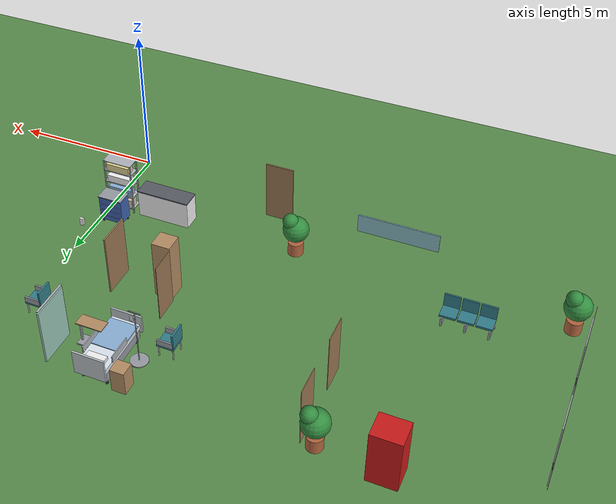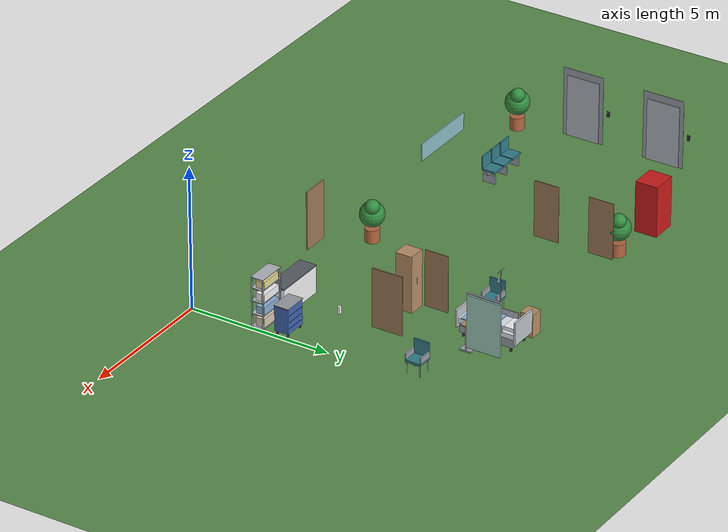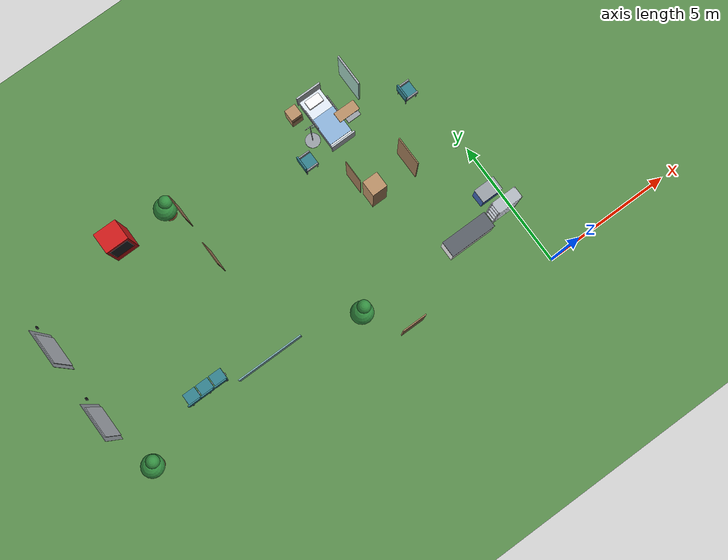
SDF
<sdf version="1.6">
 <world name="hospital">
  <include><uri>model://sun</uri></include>
  <model name="ground_plane">
   <static>true</static>
   <link name="link">
    <collision name="collision">
     <geometry><plane><normal>0 0 1</normal><size>100 100</size></plane></geometry>
     <surface>
      <contact><collide_bitmask>0xffff</collide_bitmask></contact>
      <friction><ode><mu>100</mu><mu2>50</mu2></ode></friction>
     </surface>
    </collision>
    <visual name="visual">
     <cast_shadows>false</cast_shadows>
     <geometry><plane><normal>0 0 1</normal><size>100 100</size></plane></geometry>
     <material>
      <ambient>0.35 0.55 0.3 1</ambient>
      <diffuse>0.35 0.55 0.3 1</diffuse>
      <specular>0 0 0 1</specular>
     </material>
    </visual>
   </link>
  </model>
  <model name="bathroom_door_N1">
   <static>true</static>
   <pose>-4.04 6.4 0 0 0 1.5708</pose>
   <link name="link">
    <visual name="v0">
     <pose>0 0 1 0 0 0</pose>
     <geometry><box><size>0.85 0.02 2</size></box></geometry>
     <material>
      <ambient>0.62 0.48 0.34 1</ambient>
      <diffuse>0.62 0.48 0.34 1</diffuse>
      <specular>0.1 0.1 0.1 1</specular>
     </material>
    </visual>
   </link>
  </model>
  <model name="door_N1">
   <static>true</static>
   <pose>-2.1 5.83 0 0 0 0</pose>
   <link name="link">
    <collision name="c0">
     <pose>0 0 1.04 0 0 0</pose>
     <geometry><box><size>0.045 1.1 2.08</size></box></geometry>
    </collision>
    <visual name="v0">
     <pose>0 0 1.04 0 0 0</pose>
     <geometry><box><size>0.045 1.1 2.08</size></box></geometry>
     <material>
      <ambient>0.62 0.48 0.34 1</ambient>
      <diffuse>0.62 0.48 0.34 1</diffuse>
      <specular>0.1 0.1 0.1 1</specular>
     </material>
    </visual>
   </link>
  </model>
  <model name="wardrobe_N1">
   <static>true</static>
   <pose>-3.7 5.6 0 0 0 3.1416</pose>
   <link name="link">
    <collision name="c0">
     <pose>0 0 1 0 0 0</pose>
     <geometry><box><size>0.6 0.6 2</size></box></geometry>
    </collision>
    <visual name="v0">
     <pose>0 0 1 0 0 0</pose>
     <geometry><box><size>0.6 0.6 2</size></box></geometry>
     <material>
      <ambient>0.72 0.56 0.4 1</ambient>
      <diffuse>0.72 0.56 0.4 1</diffuse>
      <specular>0.1 0.1 0.1 1</specular>
     </material>
    </visual>
    <visual name="v1">
     <pose>0 -0.301 1.025 0 0 0</pose>
     <geometry><box><size>0.02 0.005 0.25</size></box></geometry>
     <material>
      <ambient>0.6 0.62 0.65 1</ambient>
      <diffuse>0.6 0.62 0.65 1</diffuse>
      <specular>0.1 0.1 0.1 1</specular>
     </material>
    </visual>
   </link>
  </model>
  <model name="bed_N1">
   <static>true</static>
   <pose>-3.5 8.8 0 0 0 0</pose>
   <link name="link">
    <collision name="c0">
     <pose>-0.38 -0.85 0.075 0 0 0</pose>
     <geometry><cylinder><radius>0.05</radius><length>0.15</length></cylinder></geometry>
    </collision>
    <visual name="v0">
     <pose>-0.38 -0.85 0.075 0 0 0</pose>
     <geometry><cylinder><radius>0.05</radius><length>0.15</length></cylinder></geometry>
     <material>
      <ambient>0.15 0.15 0.17 1</ambient>
      <diffuse>0.15 0.15 0.17 1</diffuse>
      <specular>0.1 0.1 0.1 1</specular>
     </material>
    </visual>
    <collision name="c1">
     <pose>-0.38 0.85 0.075 0 0 0</pose>
     <geometry><cylinder><radius>0.05</radius><length>0.15</length></cylinder></geometry>
    </collision>
    <visual name="v1">
     <pose>-0.38 0.85 0.075 0 0 0</pose>
     <geometry><cylinder><radius>0.05</radius><length>0.15</length></cylinder></geometry>
     <material>
      <ambient>0.15 0.15 0.17 1</ambient>
      <diffuse>0.15 0.15 0.17 1</diffuse>
      <specular>0.1 0.1 0.1 1</specular>
     </material>
    </visual>
    <collision name="c2">
     <pose>0.38 -0.85 0.075 0 0 0</pose>
     <geometry><cylinder><radius>0.05</radius><length>0.15</length></cylinder></geometry>
    </collision>
    <visual name="v2">
     <pose>0.38 -0.85 0.075 0 0 0</pose>
     <geometry><cylinder><radius>0.05</radius><length>0.15</length></cylinder></geometry>
     <material>
      <ambient>0.15 0.15 0.17 1</ambient>
      <diffuse>0.15 0.15 0.17 1</diffuse>
      <specular>0.1 0.1 0.1 1</specular>
     </material>
    </visual>
    <collision name="c3">
     <pose>0.38 0.85 0.075 0 0 0</pose>
     <geometry><cylinder><radius>0.05</radius><length>0.15</length></cylinder></geometry>
    </collision>
    <visual name="v3">
     <pose>0.38 0.85 0.075 0 0 0</pose>
     <geometry><cylinder><radius>0.05</radius><length>0.15</length></cylinder></geometry>
     <material>
      <ambient>0.15 0.15 0.17 1</ambient>
      <diffuse>0.15 0.15 0.17 1</diffuse>
      <specular>0.1 0.1 0.1 1</specular>
     </material>
    </visual>
    <collision name="c4">
     <pose>0 0 0.3 0 0 0</pose>
     <geometry><box><size>0.9 1.9 0.3</size></box></geometry>
    </collision>
    <visual name="v4">
     <pose>0 0 0.3 0 0 0</pose>
     <geometry><box><size>0.9 1.9 0.3</size></box></geometry>
     <material>
      <ambient>0.6 0.62 0.65 1</ambient>
      <diffuse>0.6 0.62 0.65 1</diffuse>
      <specular>0.1 0.1 0.1 1</specular>
     </material>
    </visual>
    <visual name="v5">
     <pose>0 0 0.535 0 0 0</pose>
     <geometry><box><size>0.9 2 0.17</size></box></geometry>
     <material>
      <ambient>0.88 0.92 0.96 1</ambient>
      <diffuse>0.88 0.92 0.96 1</diffuse>
      <specular>0.1 0.1 0.1 1</specular>
     </material>
    </visual>
    <collision name="c6">
     <pose>0 1.05 0.7 0 0 0</pose>
     <geometry><box><size>1 0.06 0.8</size></box></geometry>
    </collision>
    <visual name="v6">
     <pose>0 1.05 0.7 0 0 0</pose>
     <geometry><box><size>1 0.06 0.8</size></box></geometry>
     <material>
      <ambient>0.75 0.78 0.8 1</ambient>
      <diffuse>0.75 0.78 0.8 1</diffuse>
      <specular>0.1 0.1 0.1 1</specular>
     </material>
    </visual>
    <collision name="c7">
     <pose>0 -1.05 0.6 0 0 0</pose>
     <geometry><box><size>1 0.06 0.6</size></box></geometry>
    </collision>
    <visual name="v7">
     <pose>0 -1.05 0.6 0 0 0</pose>
     <geometry><box><size>1 0.06 0.6</size></box></geometry>
     <material>
      <ambient>0.75 0.78 0.8 1</ambient>
      <diffuse>0.75 0.78 0.8 1</diffuse>
      <specular>0.1 0.1 0.1 1</specular>
     </material>
    </visual>
    <visual name="v8">
     <pose>0 0.72 0.68 0 0 0</pose>
     <geometry><box><size>0.6 0.35 0.12</size></box></geometry>
     <material>
      <ambient>0.97 0.97 0.97 1</ambient>
      <diffuse>0.97 0.97 0.97 1</diffuse>
      <specular>0.1 0.1 0.1 1</specular>
     </material>
    </visual>
    <visual name="v9">
     <pose>0 -0.35 0.635 0 0 0</pose>
     <geometry><box><size>0.92 1.1 0.03</size></box></geometry>
     <material>
      <ambient>0.55 0.7 0.85 1</ambient>
      <diffuse>0.55 0.7 0.85 1</diffuse>
      <specular>0.1 0.1 0.1 1</specular>
     </material>
    </visual>
    <visual name="v10">
     <pose>-0.47 0.2 0.73 0 0 0</pose>
     <geometry><box><size>0.03 0.8 0.22</size></box></geometry>
     <material>
      <ambient>0.7 0.72 0.75 1</ambient>
      <diffuse>0.7 0.72 0.75 1</diffuse>
      <specular>0.1 0.1 0.1 1</specular>
     </material>
    </visual>
    <visual name="v11">
     <pose>0.47 0.2 0.73 0 0 0</pose>
     <geometry><box><size>0.03 0.8 0.22</size></box></geometry>
     <material>
      <ambient>0.7 0.72 0.75 1</ambient>
      <diffuse>0.7 0.72 0.75 1</diffuse>
      <specular>0.1 0.1 0.1 1</specular>
     </material>
    </visual>
   </link>
  </model>
  <model name="bedside_cabinet_N1">
   <static>true</static>
   <pose>-4.35 9.6 0 0 0 0</pose>
   <link name="link">
    <collision name="c0">
     <pose>0 0 0.4 0 0 0</pose>
     <geometry><box><size>0.45 0.45 0.8</size></box></geometry>
    </collision>
    <visual name="v0">
     <pose>0 0 0.4 0 0 0</pose>
     <geometry><box><size>0.45 0.45 0.8</size></box></geometry>
     <material>
      <ambient>0.72 0.56 0.4 1</ambient>
      <diffuse>0.72 0.56 0.4 1</diffuse>
      <specular>0.1 0.1 0.1 1</specular>
     </material>
    </visual>
    <visual name="v1">
     <pose>0 -0.226 0.51 0 0 0</pose>
     <geometry><box><size>0.35 0.005 0.12</size></box></geometry>
     <material>
      <ambient>0.6 0.45 0.32 1</ambient>
      <diffuse>0.6 0.45 0.32 1</diffuse>
      <specular>0.1 0.1 0.1 1</specular>
     </material>
    </visual>
   </link>
  </model>
  <model name="iv_stand_N1">
   <static>true</static>
   <pose>-4.3 8.55 0 0 0 0</pose>
   <link name="link">
    <collision name="c0">
     <pose>0 0 0.015 0 0 0</pose>
     <geometry><cylinder><radius>0.28</radius><length>0.03</length></cylinder></geometry>
    </collision>
    <visual name="v0">
     <pose>0 0 0.015 0 0 0</pose>
     <geometry><cylinder><radius>0.28</radius><length>0.03</length></cylinder></geometry>
     <material>
      <ambient>0.6 0.62 0.65 1</ambient>
      <diffuse>0.6 0.62 0.65 1</diffuse>
      <specular>0.1 0.1 0.1 1</specular>
     </material>
    </visual>
    <collision name="c1">
     <pose>0 0 0.98 0 0 0</pose>
     <geometry><cylinder><radius>0.015</radius><length>1.9</length></cylinder></geometry>
    </collision>
    <visual name="v1">
     <pose>0 0 0.98 0 0 0</pose>
     <geometry><cylinder><radius>0.015</radius><length>1.9</length></cylinder></geometry>
     <material>
      <ambient>0.7 0.72 0.75 1</ambient>
      <diffuse>0.7 0.72 0.75 1</diffuse>
      <specular>0.1 0.1 0.1 1</specular>
     </material>
    </visual>
    <visual name="v2">
     <pose>0 0 1.91 0 0 0</pose>
     <geometry><box><size>0.4 0.02 0.02</size></box></geometry>
     <material>
      <ambient>0.7 0.72 0.75 1</ambient>
      <diffuse>0.7 0.72 0.75 1</diffuse>
      <specular>0.1 0.1 0.1 1</specular>
     </material>
    </visual>
    <visual name="v3">
     <pose>0.12 0 1.64 0 0 0</pose>
     <geometry><box><size>0.1 0.03 0.18</size></box></geometry>
     <material>
      <ambient>0.85 0.92 0.95 0.7</ambient>
      <diffuse>0.85 0.92 0.95 0.7</diffuse>
      <specular>0.1 0.1 0.1 1</specular>
     </material>
    </visual>
   </link>
  </model>
  <model name="visitor_chair_N1">
   <static>true</static>
   <pose>-4.95 7.9 0 0 0 1.5708</pose>
   <link name="link">
    <collision name="c0">
     <pose>-0.23 -0.23 0.2 0 0 0</pose>
     <geometry><cylinder><radius>0.02</radius><length>0.4</length></cylinder></geometry>
    </collision>
    <visual name="v0">
     <pose>-0.23 -0.23 0.2 0 0 0</pose>
     <geometry><cylinder><radius>0.02</radius><length>0.4</length></cylinder></geometry>
     <material>
      <ambient>0.6 0.62 0.65 1</ambient>
      <diffuse>0.6 0.62 0.65 1</diffuse>
      <specular>0.1 0.1 0.1 1</specular>
     </material>
    </visual>
    <collision name="c1">
     <pose>-0.23 0.23 0.2 0 0 0</pose>
     <geometry><cylinder><radius>0.02</radius><length>0.4</length></cylinder></geometry>
    </collision>
    <visual name="v1">
     <pose>-0.23 0.23 0.2 0 0 0</pose>
     <geometry><cylinder><radius>0.02</radius><length>0.4</length></cylinder></geometry>
     <material>
      <ambient>0.6 0.62 0.65 1</ambient>
      <diffuse>0.6 0.62 0.65 1</diffuse>
      <specular>0.1 0.1 0.1 1</specular>
     </material>
    </visual>
    <collision name="c2">
     <pose>0.23 -0.23 0.2 0 0 0</pose>
     <geometry><cylinder><radius>0.02</radius><length>0.4</length></cylinder></geometry>
    </collision>
    <visual name="v2">
     <pose>0.23 -0.23 0.2 0 0 0</pose>
     <geometry><cylinder><radius>0.02</radius><length>0.4</length></cylinder></geometry>
     <material>
      <ambient>0.6 0.62 0.65 1</ambient>
      <diffuse>0.6 0.62 0.65 1</diffuse>
      <specular>0.1 0.1 0.1 1</specular>
     </material>
    </visual>
    <collision name="c3">
     <pose>0.23 0.23 0.2 0 0 0</pose>
     <geometry><cylinder><radius>0.02</radius><length>0.4</length></cylinder></geometry>
    </collision>
    <visual name="v3">
     <pose>0.23 0.23 0.2 0 0 0</pose>
     <geometry><cylinder><radius>0.02</radius><length>0.4</length></cylinder></geometry>
     <material>
      <ambient>0.6 0.62 0.65 1</ambient>
      <diffuse>0.6 0.62 0.65 1</diffuse>
      <specular>0.1 0.1 0.1 1</specular>
     </material>
    </visual>
    <visual name="v4">
     <pose>0 0 0.44 0 0 0</pose>
     <geometry><box><size>0.55 0.55 0.08</size></box></geometry>
     <material>
      <ambient>0.2 0.5 0.55 1</ambient>
      <diffuse>0.2 0.5 0.55 1</diffuse>
      <specular>0.1 0.1 0.1 1</specular>
     </material>
    </visual>
    <visual name="v5">
     <pose>0 0.25 0.73 0 0 0</pose>
     <geometry><box><size>0.55 0.06 0.5</size></box></geometry>
     <material>
      <ambient>0.2 0.5 0.55 1</ambient>
      <diffuse>0.2 0.5 0.55 1</diffuse>
      <specular>0.1 0.1 0.1 1</specular>
     </material>
    </visual>
    <visual name="v6">
     <pose>-0.27 0 0.58 0 0 0</pose>
     <geometry><box><size>0.05 0.5 0.2</size></box></geometry>
     <material>
      <ambient>0.6 0.62 0.65 1</ambient>
      <diffuse>0.6 0.62 0.65 1</diffuse>
      <specular>0.1 0.1 0.1 1</specular>
     </material>
    </visual>
    <visual name="v7">
     <pose>0.27 0 0.58 0 0 0</pose>
     <geometry><box><size>0.05 0.5 0.2</size></box></geometry>
     <material>
      <ambient>0.6 0.62 0.65 1</ambient>
      <diffuse>0.6 0.62 0.65 1</diffuse>
      <specular>0.1 0.1 0.1 1</specular>
     </material>
    </visual>
   </link>
  </model>
  <model name="overbed_table_N1">
   <static>true</static>
   <pose>-2.75 8.5 0 0 0 0</pose>
   <link name="link">
    <collision name="c0">
     <pose>0.15 0 0.025 0 0 0</pose>
     <geometry><box><size>0.55 0.4 0.05</size></box></geometry>
    </collision>
    <visual name="v0">
     <pose>0.15 0 0.025 0 0 0</pose>
     <geometry><box><size>0.55 0.4 0.05</size></box></geometry>
     <material>
      <ambient>0.6 0.62 0.65 1</ambient>
      <diffuse>0.6 0.62 0.65 1</diffuse>
      <specular>0.1 0.1 0.1 1</specular>
     </material>
    </visual>
    <collision name="c1">
     <pose>0.35 0 0.45 0 0 0</pose>
     <geometry><box><size>0.05 0.05 0.8</size></box></geometry>
    </collision>
    <visual name="v1">
     <pose>0.35 0 0.45 0 0 0</pose>
     <geometry><box><size>0.05 0.05 0.8</size></box></geometry>
     <material>
      <ambient>0.7 0.72 0.75 1</ambient>
      <diffuse>0.7 0.72 0.75 1</diffuse>
      <specular>0.1 0.1 0.1 1</specular>
     </material>
    </visual>
    <visual name="v2">
     <pose>-0.05 0 0.865 0 0 0</pose>
     <geometry><box><size>0.85 0.4 0.03</size></box></geometry>
     <material>
      <ambient>0.72 0.56 0.4 1</ambient>
      <diffuse>0.72 0.56 0.4 1</diffuse>
      <specular>0.1 0.1 0.1 1</specular>
     </material>
    </visual>
   </link>
  </model>
  <model name="curtain_N1">
   <static>true</static>
   <pose>-2.1 9.3 0 0 0 0</pose>
   <link name="link">
    <collision name="c0">
     <pose>0 0 1.275 0 0 0</pose>
     <geometry><box><size>0.06 1.2 1.85</size></box></geometry>
    </collision>
    <visual name="v0">
     <pose>0 0 1.275 0 0 0</pose>
     <geometry><box><size>0.06 1.2 1.85</size></box></geometry>
     <material>
      <ambient>0.62 0.8 0.74 1</ambient>
      <diffuse>0.62 0.8 0.74 1</diffuse>
      <specular>0.1 0.1 0.1 1</specular>
     </material>
    </visual>
    <visual name="v1">
     <pose>0 0 2.265 0 0 0</pose>
     <geometry><box><size>0.06 1.2 0.03</size></box></geometry>
     <material>
      <ambient>0.7 0.72 0.75 1</ambient>
      <diffuse>0.7 0.72 0.75 1</diffuse>
      <specular>0.1 0.1 0.1 1</specular>
     </material>
    </visual>
   </link>
  </model>
  <model name="visitor_chair_N2">
   <static>true</static>
   <pose>-0.55 7.9 0 0 0 1.5708</pose>
   <link name="link">
    <collision name="c0">
     <pose>-0.23 -0.23 0.2 0 0 0</pose>
     <geometry><cylinder><radius>0.02</radius><length>0.4</length></cylinder></geometry>
    </collision>
    <visual name="v0">
     <pose>-0.23 -0.23 0.2 0 0 0</pose>
     <geometry><cylinder><radius>0.02</radius><length>0.4</length></cylinder></geometry>
     <material>
      <ambient>0.6 0.62 0.65 1</ambient>
      <diffuse>0.6 0.62 0.65 1</diffuse>
      <specular>0.1 0.1 0.1 1</specular>
     </material>
    </visual>
    <collision name="c1">
     <pose>-0.23 0.23 0.2 0 0 0</pose>
     <geometry><cylinder><radius>0.02</radius><length>0.4</length></cylinder></geometry>
    </collision>
    <visual name="v1">
     <pose>-0.23 0.23 0.2 0 0 0</pose>
     <geometry><cylinder><radius>0.02</radius><length>0.4</length></cylinder></geometry>
     <material>
      <ambient>0.6 0.62 0.65 1</ambient>
      <diffuse>0.6 0.62 0.65 1</diffuse>
      <specular>0.1 0.1 0.1 1</specular>
     </material>
    </visual>
    <collision name="c2">
     <pose>0.23 -0.23 0.2 0 0 0</pose>
     <geometry><cylinder><radius>0.02</radius><length>0.4</length></cylinder></geometry>
    </collision>
    <visual name="v2">
     <pose>0.23 -0.23 0.2 0 0 0</pose>
     <geometry><cylinder><radius>0.02</radius><length>0.4</length></cylinder></geometry>
     <material>
      <ambient>0.6 0.62 0.65 1</ambient>
      <diffuse>0.6 0.62 0.65 1</diffuse>
      <specular>0.1 0.1 0.1 1</specular>
     </material>
    </visual>
    <collision name="c3">
     <pose>0.23 0.23 0.2 0 0 0</pose>
     <geometry><cylinder><radius>0.02</radius><length>0.4</length></cylinder></geometry>
    </collision>
    <visual name="v3">
     <pose>0.23 0.23 0.2 0 0 0</pose>
     <geometry><cylinder><radius>0.02</radius><length>0.4</length></cylinder></geometry>
     <material>
      <ambient>0.6 0.62 0.65 1</ambient>
      <diffuse>0.6 0.62 0.65 1</diffuse>
      <specular>0.1 0.1 0.1 1</specular>
     </material>
    </visual>
    <visual name="v4">
     <pose>0 0 0.44 0 0 0</pose>
     <geometry><box><size>0.55 0.55 0.08</size></box></geometry>
     <material>
      <ambient>0.2 0.5 0.55 1</ambient>
      <diffuse>0.2 0.5 0.55 1</diffuse>
      <specular>0.1 0.1 0.1 1</specular>
     </material>
    </visual>
    <visual name="v5">
     <pose>0 0.25 0.73 0 0 0</pose>
     <geometry><box><size>0.55 0.06 0.5</size></box></geometry>
     <material>
      <ambient>0.2 0.5 0.55 1</ambient>
      <diffuse>0.2 0.5 0.55 1</diffuse>
      <specular>0.1 0.1 0.1 1</specular>
     </material>
    </visual>
    <visual name="v6">
     <pose>-0.27 0 0.58 0 0 0</pose>
     <geometry><box><size>0.05 0.5 0.2</size></box></geometry>
     <material>
      <ambient>0.6 0.62 0.65 1</ambient>
      <diffuse>0.6 0.62 0.65 1</diffuse>
      <specular>0.1 0.1 0.1 1</specular>
     </material>
    </visual>
    <visual name="v7">
     <pose>0.27 0 0.58 0 0 0</pose>
     <geometry><box><size>0.05 0.5 0.2</size></box></geometry>
     <material>
      <ambient>0.6 0.62 0.65 1</ambient>
      <diffuse>0.6 0.62 0.65 1</diffuse>
      <specular>0.1 0.1 0.1 1</specular>
     </material>
    </visual>
   </link>
  </model>
  <model name="lobby_sign">
   <static>true</static>
   <pose>-10 2.88 0 0 0 0</pose>
   <link name="link">
    <visual name="v0">
     <pose>0 0 2.3 0 0 0</pose>
     <geometry><box><size>2.5 0.04 0.6</size></box></geometry>
     <material>
      <ambient>0.55 0.75 0.78 1</ambient>
      <diffuse>0.55 0.75 0.78 1</diffuse>
      <specular>0.1 0.1 0.1 1</specular>
     </material>
    </visual>
   </link>
  </model>
  <model name="lobby_plant_2">
   <static>true</static>
   <pose>-15.4 2.4 0 0 0 0</pose>
   <link name="link">
    <collision name="c0">
     <pose>0 0 0.225 0 0 0</pose>
     <geometry><cylinder><radius>0.25</radius><length>0.45</length></cylinder></geometry>
    </collision>
    <visual name="v0">
     <pose>0 0 0.225 0 0 0</pose>
     <geometry><cylinder><radius>0.25</radius><length>0.45</length></cylinder></geometry>
     <material>
      <ambient>0.7 0.4 0.25 1</ambient>
      <diffuse>0.7 0.4 0.25 1</diffuse>
      <specular>0.1 0.1 0.1 1</specular>
     </material>
    </visual>
    <visual name="v1">
     <pose>0 0 0.95 0 0 0</pose>
     <geometry><sphere><radius>0.42</radius></sphere></geometry>
     <material>
      <ambient>0.2 0.55 0.25 1</ambient>
      <diffuse>0.2 0.55 0.25 1</diffuse>
      <specular>0.1 0.1 0.1 1</specular>
     </material>
    </visual>
    <visual name="v2">
     <pose>0.15 0.1 1.3 0 0 0</pose>
     <geometry><sphere><radius>0.25</radius></sphere></geometry>
     <material>
      <ambient>0.2 0.55 0.25 1</ambient>
      <diffuse>0.2 0.55 0.25 1</diffuse>
      <specular>0.1 0.1 0.1 1</specular>
     </material>
    </visual>
   </link>
  </model>
  <model name="lobby_plant_3">
   <static>true</static>
   <pose>-6.6 2.4 0 0 0 0</pose>
   <link name="link">
    <collision name="c0">
     <pose>0 0 0.225 0 0 0</pose>
     <geometry><cylinder><radius>0.25</radius><length>0.45</length></cylinder></geometry>
    </collision>
    <visual name="v0">
     <pose>0 0 0.225 0 0 0</pose>
     <geometry><cylinder><radius>0.25</radius><length>0.45</length></cylinder></geometry>
     <material>
      <ambient>0.7 0.4 0.25 1</ambient>
      <diffuse>0.7 0.4 0.25 1</diffuse>
      <specular>0.1 0.1 0.1 1</specular>
     </material>
    </visual>
    <visual name="v1">
     <pose>0 0 0.95 0 0 0</pose>
     <geometry><sphere><radius>0.42</radius></sphere></geometry>
     <material>
      <ambient>0.2 0.55 0.25 1</ambient>
      <diffuse>0.2 0.55 0.25 1</diffuse>
      <specular>0.1 0.1 0.1 1</specular>
     </material>
    </visual>
    <visual name="v2">
     <pose>0.15 0.1 1.3 0 0 0</pose>
     <geometry><sphere><radius>0.25</radius></sphere></geometry>
     <material>
      <ambient>0.2 0.55 0.25 1</ambient>
      <diffuse>0.2 0.55 0.25 1</diffuse>
      <specular>0.1 0.1 0.1 1</specular>
     </material>
    </visual>
   </link>
  </model>
  <model name="elevator_door_0">
   <static>true</static>
   <pose>-15.88 4.6 0 0 0 -1.5708</pose>
   <link name="link">
    <collision name="c0">
     <pose>0 0 1.1 0 0 0</pose>
     <geometry><box><size>1.2 0.04 2.2</size></box></geometry>
    </collision>
    <visual name="v0">
     <pose>0 0 1.1 0 0 0</pose>
     <geometry><box><size>1.2 0.04 2.2</size></box></geometry>
     <material>
      <ambient>0.7 0.72 0.75 1</ambient>
      <diffuse>0.7 0.72 0.75 1</diffuse>
      <specular>0.1 0.1 0.1 1</specular>
     </material>
    </visual>
   </link>
  </model>
  <model name="elevator_frame_0">
   <static>true</static>
   <pose>-15.895 4.6 0 0 0 -1.5708</pose>
   <link name="link">
    <visual name="v0">
     <pose>0 0 1.225 0 0 0</pose>
     <geometry><box><size>1.5 0.01 2.45</size></box></geometry>
     <material>
      <ambient>0.6 0.62 0.65 1</ambient>
      <diffuse>0.6 0.62 0.65 1</diffuse>
      <specular>0.1 0.1 0.1 1</specular>
     </material>
    </visual>
   </link>
  </model>
  <model name="elevator_button_0">
   <static>true</static>
   <pose>-15.88 5.55 0 0 0 -1.5708</pose>
   <link name="link">
    <visual name="v0">
     <pose>0 0 1.19 0 0 0</pose>
     <geometry><box><size>0.1 0.04 0.18</size></box></geometry>
     <material>
      <ambient>0.15 0.15 0.17 1</ambient>
      <diffuse>0.15 0.15 0.17 1</diffuse>
      <specular>0.1 0.1 0.1 1</specular>
     </material>
    </visual>
   </link>
  </model>
  <model name="elevator_door_1">
   <static>true</static>
   <pose>-15.88 7.6 0 0 0 -1.5708</pose>
   <link name="link">
    <collision name="c0">
     <pose>0 0 1.1 0 0 0</pose>
     <geometry><box><size>1.2 0.04 2.2</size></box></geometry>
    </collision>
    <visual name="v0">
     <pose>0 0 1.1 0 0 0</pose>
     <geometry><box><size>1.2 0.04 2.2</size></box></geometry>
     <material>
      <ambient>0.7 0.72 0.75 1</ambient>
      <diffuse>0.7 0.72 0.75 1</diffuse>
      <specular>0.1 0.1 0.1 1</specular>
     </material>
    </visual>
   </link>
  </model>
  <model name="elevator_frame_1">
   <static>true</static>
   <pose>-15.895 7.6 0 0 0 -1.5708</pose>
   <link name="link">
    <visual name="v0">
     <pose>0 0 1.225 0 0 0</pose>
     <geometry><box><size>1.5 0.01 2.45</size></box></geometry>
     <material>
      <ambient>0.6 0.62 0.65 1</ambient>
      <diffuse>0.6 0.62 0.65 1</diffuse>
      <specular>0.1 0.1 0.1 1</specular>
     </material>
    </visual>
   </link>
  </model>
  <model name="elevator_button_1">
   <static>true</static>
   <pose>-15.88 8.55 0 0 0 -1.5708</pose>
   <link name="link">
    <visual name="v0">
     <pose>0 0 1.19 0 0 0</pose>
     <geometry><box><size>0.1 0.04 0.18</size></box></geometry>
     <material>
      <ambient>0.15 0.15 0.17 1</ambient>
      <diffuse>0.15 0.15 0.17 1</diffuse>
      <specular>0.1 0.1 0.1 1</specular>
     </material>
    </visual>
   </link>
  </model>
  <model name="restroom_door_0">
   <static>true</static>
   <pose>-9.6 7 0 0 0 -1.5708</pose>
   <link name="link">
    <visual name="v0">
     <pose>0 0 1 0 0 0</pose>
     <geometry><box><size>0.9 0.02 2</size></box></geometry>
     <material>
      <ambient>0.62 0.48 0.34 1</ambient>
      <diffuse>0.62 0.48 0.34 1</diffuse>
      <specular>0.1 0.1 0.1 1</specular>
     </material>
    </visual>
   </link>
  </model>
  <model name="restroom_door_1">
   <static>true</static>
   <pose>-9.6 9 0 0 0 -1.5708</pose>
   <link name="link">
    <visual name="v0">
     <pose>0 0 1 0 0 0</pose>
     <geometry><box><size>0.9 0.02 2</size></box></geometry>
     <material>
      <ambient>0.62 0.48 0.34 1</ambient>
      <diffuse>0.62 0.48 0.34 1</diffuse>
      <specular>0.1 0.1 0.1 1</specular>
     </material>
    </visual>
   </link>
  </model>
  <model name="vending_machine">
   <static>true</static>
   <pose>-12 9.5 0 0 0 0</pose>
   <link name="link">
    <collision name="c0">
     <pose>0 0 0.9 0 0 0</pose>
     <geometry><box><size>0.9 0.8 1.8</size></box></geometry>
    </collision>
    <visual name="v0">
     <pose>0 0 0.9 0 0 0</pose>
     <geometry><box><size>0.9 0.8 1.8</size></box></geometry>
     <material>
      <ambient>0.8 0.1 0.1 1</ambient>
      <diffuse>0.8 0.1 0.1 1</diffuse>
      <specular>0.1 0.1 0.1 1</specular>
     </material>
    </visual>
    <visual name="v1">
     <pose>0 -0.403 1.05 0 0 0</pose>
     <geometry><box><size>0.72 0.005 1.1</size></box></geometry>
     <material>
      <ambient>0.15 0.15 0.17 1</ambient>
      <diffuse>0.15 0.15 0.17 1</diffuse>
      <specular>0.1 0.1 0.1 1</specular>
     </material>
    </visual>
   </link>
  </model>
  <model name="elevator_bench">
   <static>true</static>
   <pose>-12.5 3.55 0 0 0 3.1416</pose>
   <link name="link">
    <collision name="c0">
     <pose>0 0 0.33 0 0 0</pose>
     <geometry><box><size>1.65 0.08 0.06</size></box></geometry>
    </collision>
    <visual name="v0">
     <pose>0 0 0.33 0 0 0</pose>
     <geometry><box><size>1.65 0.08 0.06</size></box></geometry>
     <material>
      <ambient>0.6 0.62 0.65 1</ambient>
      <diffuse>0.6 0.62 0.65 1</diffuse>
      <specular>0.1 0.1 0.1 1</specular>
     </material>
    </visual>
    <collision name="c1">
     <pose>-0.725 0 0.15 0 0 0</pose>
     <geometry><box><size>0.06 0.45 0.3</size></box></geometry>
    </collision>
    <visual name="v1">
     <pose>-0.725 0 0.15 0 0 0</pose>
     <geometry><box><size>0.06 0.45 0.3</size></box></geometry>
     <material>
      <ambient>0.6 0.62 0.65 1</ambient>
      <diffuse>0.6 0.62 0.65 1</diffuse>
      <specular>0.1 0.1 0.1 1</specular>
     </material>
    </visual>
    <collision name="c2">
     <pose>0 0 0.15 0 0 0</pose>
     <geometry><box><size>0.06 0.45 0.3</size></box></geometry>
    </collision>
    <visual name="v2">
     <pose>0 0 0.15 0 0 0</pose>
     <geometry><box><size>0.06 0.45 0.3</size></box></geometry>
     <material>
      <ambient>0.6 0.62 0.65 1</ambient>
      <diffuse>0.6 0.62 0.65 1</diffuse>
      <specular>0.1 0.1 0.1 1</specular>
     </material>
    </visual>
    <collision name="c3">
     <pose>0.725 0 0.15 0 0 0</pose>
     <geometry><box><size>0.06 0.45 0.3</size></box></geometry>
    </collision>
    <visual name="v3">
     <pose>0.725 0 0.15 0 0 0</pose>
     <geometry><box><size>0.06 0.45 0.3</size></box></geometry>
     <material>
      <ambient>0.6 0.62 0.65 1</ambient>
      <diffuse>0.6 0.62 0.65 1</diffuse>
      <specular>0.1 0.1 0.1 1</specular>
     </material>
    </visual>
    <visual name="v4">
     <pose>-0.55 -0.02 0.435 0 0 0</pose>
     <geometry><box><size>0.5 0.48 0.07</size></box></geometry>
     <material>
      <ambient>0.2 0.5 0.55 1</ambient>
      <diffuse>0.2 0.5 0.55 1</diffuse>
      <specular>0.1 0.1 0.1 1</specular>
     </material>
    </visual>
    <visual name="v5">
     <pose>-0.55 0.22 0.695 0 0 0</pose>
     <geometry><box><size>0.5 0.05 0.45</size></box></geometry>
     <material>
      <ambient>0.2 0.5 0.55 1</ambient>
      <diffuse>0.2 0.5 0.55 1</diffuse>
      <specular>0.1 0.1 0.1 1</specular>
     </material>
    </visual>
    <visual name="v6">
     <pose>0 -0.02 0.435 0 0 0</pose>
     <geometry><box><size>0.5 0.48 0.07</size></box></geometry>
     <material>
      <ambient>0.2 0.5 0.55 1</ambient>
      <diffuse>0.2 0.5 0.55 1</diffuse>
      <specular>0.1 0.1 0.1 1</specular>
     </material>
    </visual>
    <visual name="v7">
     <pose>0 0.22 0.695 0 0 0</pose>
     <geometry><box><size>0.5 0.05 0.45</size></box></geometry>
     <material>
      <ambient>0.2 0.5 0.55 1</ambient>
      <diffuse>0.2 0.5 0.55 1</diffuse>
      <specular>0.1 0.1 0.1 1</specular>
     </material>
    </visual>
    <visual name="v8">
     <pose>0.55 -0.02 0.435 0 0 0</pose>
     <geometry><box><size>0.5 0.48 0.07</size></box></geometry>
     <material>
      <ambient>0.2 0.5 0.55 1</ambient>
      <diffuse>0.2 0.5 0.55 1</diffuse>
      <specular>0.1 0.1 0.1 1</specular>
     </material>
    </visual>
    <visual name="v9">
     <pose>0.55 0.22 0.695 0 0 0</pose>
     <geometry><box><size>0.5 0.05 0.45</size></box></geometry>
     <material>
      <ambient>0.2 0.5 0.55 1</ambient>
      <diffuse>0.2 0.5 0.55 1</diffuse>
      <specular>0.1 0.1 0.1 1</specular>
     </material>
    </visual>
   </link>
  </model>
  <model name="elevator_plant">
   <static>true</static>
   <pose>-10 9.4 0 0 0 0</pose>
   <link name="link">
    <collision name="c0">
     <pose>0 0 0.225 0 0 0</pose>
     <geometry><cylinder><radius>0.25</radius><length>0.45</length></cylinder></geometry>
    </collision>
    <visual name="v0">
     <pose>0 0 0.225 0 0 0</pose>
     <geometry><cylinder><radius>0.25</radius><length>0.45</length></cylinder></geometry>
     <material>
      <ambient>0.7 0.4 0.25 1</ambient>
      <diffuse>0.7 0.4 0.25 1</diffuse>
      <specular>0.1 0.1 0.1 1</specular>
     </material>
    </visual>
    <visual name="v1">
     <pose>0 0 0.95 0 0 0</pose>
     <geometry><sphere><radius>0.42</radius></sphere></geometry>
     <material>
      <ambient>0.2 0.55 0.25 1</ambient>
      <diffuse>0.2 0.55 0.25 1</diffuse>
      <specular>0.1 0.1 0.1 1</specular>
     </material>
    </visual>
    <visual name="v2">
     <pose>0.15 0.1 1.3 0 0 0</pose>
     <geometry><sphere><radius>0.25</radius></sphere></geometry>
     <material>
      <ambient>0.2 0.55 0.25 1</ambient>
      <diffuse>0.2 0.55 0.25 1</diffuse>
      <specular>0.1 0.1 0.1 1</specular>
     </material>
    </visual>
   </link>
  </model>
  <model name="ward_door_left">
   <static>true</static>
   <pose>-5.445 1 0 0 0 0</pose>
   <link name="link">
    <collision name="c0">
     <pose>0 0 1.04 0 0 0</pose>
     <geometry><box><size>0.95 0.045 2.08</size></box></geometry>
    </collision>
    <visual name="v0">
     <pose>0 0 1.04 0 0 0</pose>
     <geometry><box><size>0.95 0.045 2.08</size></box></geometry>
     <material>
      <ambient>0.62 0.48 0.34 1</ambient>
      <diffuse>0.62 0.48 0.34 1</diffuse>
      <specular>0.1 0.1 0.1 1</specular>
     </material>
    </visual>
   </link>
  </model>
  <model name="med_counter">
   <static>true</static>
   <pose>-2 2.4 0 0 0 3.1416</pose>
   <link name="link">
    <collision name="c0">
     <pose>0 0 0.475 0 0 0</pose>
     <geometry><box><size>1.8 0.6 0.95</size></box></geometry>
    </collision>
    <visual name="v0">
     <pose>0 0 0.475 0 0 0</pose>
     <geometry><box><size>1.8 0.6 0.95</size></box></geometry>
     <material>
      <ambient>0.97 0.97 0.97 1</ambient>
      <diffuse>0.97 0.97 0.97 1</diffuse>
      <specular>0.1 0.1 0.1 1</specular>
     </material>
    </visual>
    <visual name="v1">
     <pose>0 0 0.97 0 0 0</pose>
     <geometry><box><size>1.82 0.62 0.04</size></box></geometry>
     <material>
      <ambient>0.35 0.37 0.4 1</ambient>
      <diffuse>0.35 0.37 0.4 1</diffuse>
      <specular>0.1 0.1 0.1 1</specular>
     </material>
    </visual>
   </link>
  </model>
  <model name="med_shelf_1">
   <static>true</static>
   <pose>-0.4 2.5 0 0 0 0</pose>
   <link name="link">
    <collision name="c0">
     <pose>-0.48 -0.2 0.95 0 0 0</pose>
     <geometry><box><size>0.04 0.04 1.9</size></box></geometry>
    </collision>
    <visual name="v0">
     <pose>-0.48 -0.2 0.95 0 0 0</pose>
     <geometry><box><size>0.04 0.04 1.9</size></box></geometry>
     <material>
      <ambient>0.7 0.72 0.75 1</ambient>
      <diffuse>0.7 0.72 0.75 1</diffuse>
      <specular>0.1 0.1 0.1 1</specular>
     </material>
    </visual>
    <collision name="c1">
     <pose>-0.48 0.2 0.95 0 0 0</pose>
     <geometry><box><size>0.04 0.04 1.9</size></box></geometry>
    </collision>
    <visual name="v1">
     <pose>-0.48 0.2 0.95 0 0 0</pose>
     <geometry><box><size>0.04 0.04 1.9</size></box></geometry>
     <material>
      <ambient>0.7 0.72 0.75 1</ambient>
      <diffuse>0.7 0.72 0.75 1</diffuse>
      <specular>0.1 0.1 0.1 1</specular>
     </material>
    </visual>
    <collision name="c2">
     <pose>0.48 -0.2 0.95 0 0 0</pose>
     <geometry><box><size>0.04 0.04 1.9</size></box></geometry>
    </collision>
    <visual name="v2">
     <pose>0.48 -0.2 0.95 0 0 0</pose>
     <geometry><box><size>0.04 0.04 1.9</size></box></geometry>
     <material>
      <ambient>0.7 0.72 0.75 1</ambient>
      <diffuse>0.7 0.72 0.75 1</diffuse>
      <specular>0.1 0.1 0.1 1</specular>
     </material>
    </visual>
    <collision name="c3">
     <pose>0.48 0.2 0.95 0 0 0</pose>
     <geometry><box><size>0.04 0.04 1.9</size></box></geometry>
    </collision>
    <visual name="v3">
     <pose>0.48 0.2 0.95 0 0 0</pose>
     <geometry><box><size>0.04 0.04 1.9</size></box></geometry>
     <material>
      <ambient>0.7 0.72 0.75 1</ambient>
      <diffuse>0.7 0.72 0.75 1</diffuse>
      <specular>0.1 0.1 0.1 1</specular>
     </material>
    </visual>
    <collision name="c4">
     <pose>0 0 0.16 0 0 0</pose>
     <geometry><box><size>1 0.45 0.02</size></box></geometry>
    </collision>
    <visual name="v4">
     <pose>0 0 0.16 0 0 0</pose>
     <geometry><box><size>1 0.45 0.02</size></box></geometry>
     <material>
      <ambient>0.7 0.72 0.75 1</ambient>
      <diffuse>0.7 0.72 0.75 1</diffuse>
      <specular>0.1 0.1 0.1 1</specular>
     </material>
    </visual>
    <visual name="v5">
     <pose>0 0 0.61 0 0 0</pose>
     <geometry><box><size>1 0.45 0.02</size></box></geometry>
     <material>
      <ambient>0.7 0.72 0.75 1</ambient>
      <diffuse>0.7 0.72 0.75 1</diffuse>
      <specular>0.1 0.1 0.1 1</specular>
     </material>
    </visual>
    <visual name="v6">
     <pose>0 0 1.06 0 0 0</pose>
     <geometry><box><size>1 0.45 0.02</size></box></geometry>
     <material>
      <ambient>0.7 0.72 0.75 1</ambient>
      <diffuse>0.7 0.72 0.75 1</diffuse>
      <specular>0.1 0.1 0.1 1</specular>
     </material>
    </visual>
    <visual name="v7">
     <pose>0 0 1.51 0 0 0</pose>
     <geometry><box><size>1 0.45 0.02</size></box></geometry>
     <material>
      <ambient>0.7 0.72 0.75 1</ambient>
      <diffuse>0.7 0.72 0.75 1</diffuse>
      <specular>0.1 0.1 0.1 1</specular>
     </material>
    </visual>
    <visual name="v8">
     <pose>0 0 1.89 0 0 0</pose>
     <geometry><box><size>1 0.45 0.02</size></box></geometry>
     <material>
      <ambient>0.7 0.72 0.75 1</ambient>
      <diffuse>0.7 0.72 0.75 1</diffuse>
      <specular>0.1 0.1 0.1 1</specular>
     </material>
    </visual>
    <collision name="c9">
     <pose>0 0.05 0.32 0 0 0</pose>
     <geometry><box><size>0.85 0.3 0.3</size></box></geometry>
    </collision>
    <visual name="v9">
     <pose>0 0.05 0.32 0 0 0</pose>
     <geometry><box><size>0.85 0.3 0.3</size></box></geometry>
     <material>
      <ambient>0.85 0.8 0.7 1</ambient>
      <diffuse>0.85 0.8 0.7 1</diffuse>
      <specular>0.1 0.1 0.1 1</specular>
     </material>
    </visual>
    <visual name="v10">
     <pose>0 0.05 0.745 0 0 0</pose>
     <geometry><box><size>0.8 0.3 0.25</size></box></geometry>
     <material>
      <ambient>0.55 0.7 0.85 1</ambient>
      <diffuse>0.55 0.7 0.85 1</diffuse>
      <specular>0.1 0.1 0.1 1</specular>
     </material>
    </visual>
    <visual name="v11">
     <pose>0 0.05 1.195 0 0 0</pose>
     <geometry><box><size>0.8 0.3 0.25</size></box></geometry>
     <material>
      <ambient>0.97 0.97 0.97 1</ambient>
      <diffuse>0.97 0.97 0.97 1</diffuse>
      <specular>0.1 0.1 0.1 1</specular>
     </material>
    </visual>
    <visual name="v12">
     <pose>0 0.05 1.645 0 0 0</pose>
     <geometry><box><size>0.8 0.3 0.25</size></box></geometry>
     <material>
      <ambient>0.9 0.85 0.6 1</ambient>
      <diffuse>0.9 0.85 0.6 1</diffuse>
      <specular>0.1 0.1 0.1 1</specular>
     </material>
    </visual>
   </link>
  </model>
  <model name="medication_cart">
   <static>true</static>
   <pose>-0.5 3.25 0 0 0 3.1416</pose>
   <link name="link">
    <collision name="c0">
     <pose>-0.34 -0.19 0.06 0 0 0</pose>
     <geometry><cylinder><radius>0.04</radius><length>0.12</length></cylinder></geometry>
    </collision>
    <visual name="v0">
     <pose>-0.34 -0.19 0.06 0 0 0</pose>
     <geometry><cylinder><radius>0.04</radius><length>0.12</length></cylinder></geometry>
     <material>
      <ambient>0.15 0.15 0.17 1</ambient>
      <diffuse>0.15 0.15 0.17 1</diffuse>
      <specular>0.1 0.1 0.1 1</specular>
     </material>
    </visual>
    <collision name="c1">
     <pose>-0.34 0.19 0.06 0 0 0</pose>
     <geometry><cylinder><radius>0.04</radius><length>0.12</length></cylinder></geometry>
    </collision>
    <visual name="v1">
     <pose>-0.34 0.19 0.06 0 0 0</pose>
     <geometry><cylinder><radius>0.04</radius><length>0.12</length></cylinder></geometry>
     <material>
      <ambient>0.15 0.15 0.17 1</ambient>
      <diffuse>0.15 0.15 0.17 1</diffuse>
      <specular>0.1 0.1 0.1 1</specular>
     </material>
    </visual>
    <collision name="c2">
     <pose>0.34 -0.19 0.06 0 0 0</pose>
     <geometry><cylinder><radius>0.04</radius><length>0.12</length></cylinder></geometry>
    </collision>
    <visual name="v2">
     <pose>0.34 -0.19 0.06 0 0 0</pose>
     <geometry><cylinder><radius>0.04</radius><length>0.12</length></cylinder></geometry>
     <material>
      <ambient>0.15 0.15 0.17 1</ambient>
      <diffuse>0.15 0.15 0.17 1</diffuse>
      <specular>0.1 0.1 0.1 1</specular>
     </material>
    </visual>
    <collision name="c3">
     <pose>0.34 0.19 0.06 0 0 0</pose>
     <geometry><cylinder><radius>0.04</radius><length>0.12</length></cylinder></geometry>
    </collision>
    <visual name="v3">
     <pose>0.34 0.19 0.06 0 0 0</pose>
     <geometry><cylinder><radius>0.04</radius><length>0.12</length></cylinder></geometry>
     <material>
      <ambient>0.15 0.15 0.17 1</ambient>
      <diffuse>0.15 0.15 0.17 1</diffuse>
      <specular>0.1 0.1 0.1 1</specular>
     </material>
    </visual>
    <collision name="c4">
     <pose>0 0 0.56 0 0 0</pose>
     <geometry><box><size>0.8 0.5 0.88</size></box></geometry>
    </collision>
    <visual name="v4">
     <pose>0 0 0.56 0 0 0</pose>
     <geometry><box><size>0.8 0.5 0.88</size></box></geometry>
     <material>
      <ambient>0.25 0.4 0.7 1</ambient>
      <diffuse>0.25 0.4 0.7 1</diffuse>
      <specular>0.1 0.1 0.1 1</specular>
     </material>
    </visual>
    <visual name="v5">
     <pose>0 0 1.015 0 0 0</pose>
     <geometry><box><size>0.84 0.54 0.03</size></box></geometry>
     <material>
      <ambient>0.6 0.62 0.65 1</ambient>
      <diffuse>0.6 0.62 0.65 1</diffuse>
      <specular>0.1 0.1 0.1 1</specular>
     </material>
    </visual>
    <visual name="v6">
     <pose>0 -0.253 0.305 0 0 0</pose>
     <geometry><box><size>0.7 0.005 0.01</size></box></geometry>
     <material>
      <ambient>0.15 0.15 0.17 1</ambient>
      <diffuse>0.15 0.15 0.17 1</diffuse>
      <specular>0.1 0.1 0.1 1</specular>
     </material>
    </visual>
    <visual name="v7">
     <pose>0 -0.253 0.525 0 0 0</pose>
     <geometry><box><size>0.7 0.005 0.01</size></box></geometry>
     <material>
      <ambient>0.15 0.15 0.17 1</ambient>
      <diffuse>0.15 0.15 0.17 1</diffuse>
      <specular>0.1 0.1 0.1 1</specular>
     </material>
    </visual>
    <visual name="v8">
     <pose>0 -0.253 0.745 0 0 0</pose>
     <geometry><box><size>0.7 0.005 0.01</size></box></geometry>
     <material>
      <ambient>0.15 0.15 0.17 1</ambient>
      <diffuse>0.15 0.15 0.17 1</diffuse>
      <specular>0.1 0.1 0.1 1</specular>
     </material>
    </visual>
   </link>
  </model>
  <model name="hand_sanitizer_0">
   <static>true</static>
   <pose>-0.5 5.12 0 0 0 0</pose>
   <link name="link">
    <visual name="v0">
     <pose>0 0 1.325 0 0 0</pose>
     <geometry><box><size>0.12 0.08 0.25</size></box></geometry>
     <material>
      <ambient>0.97 0.97 0.97 1</ambient>
      <diffuse>0.97 0.97 0.97 1</diffuse>
      <specular>0.1 0.1 0.1 1</specular>
     </material>
    </visual>
   </link>
  </model>
 </world>
</sdf>
